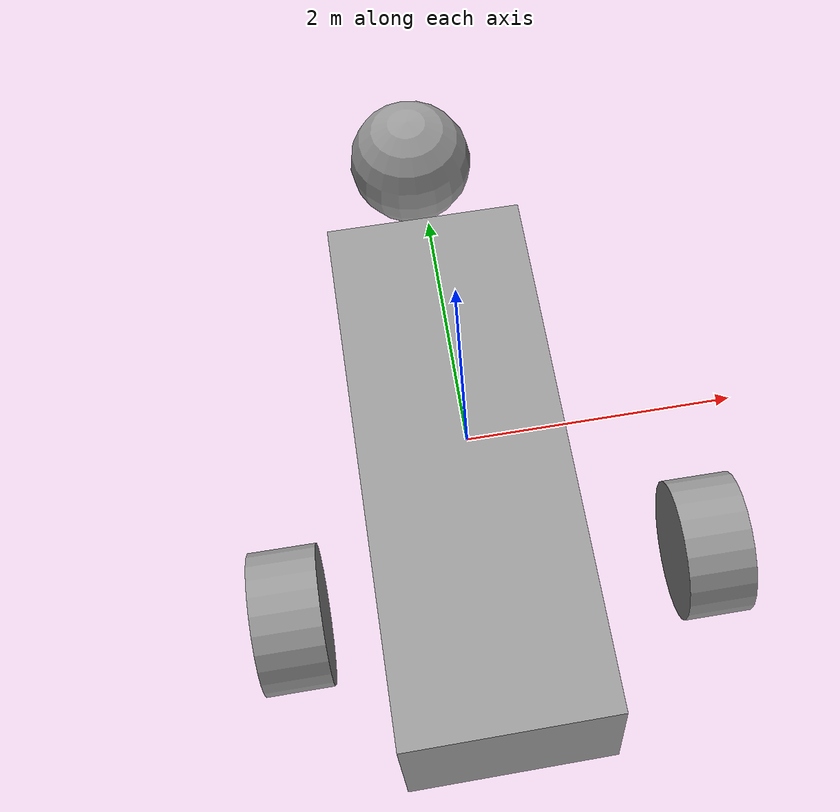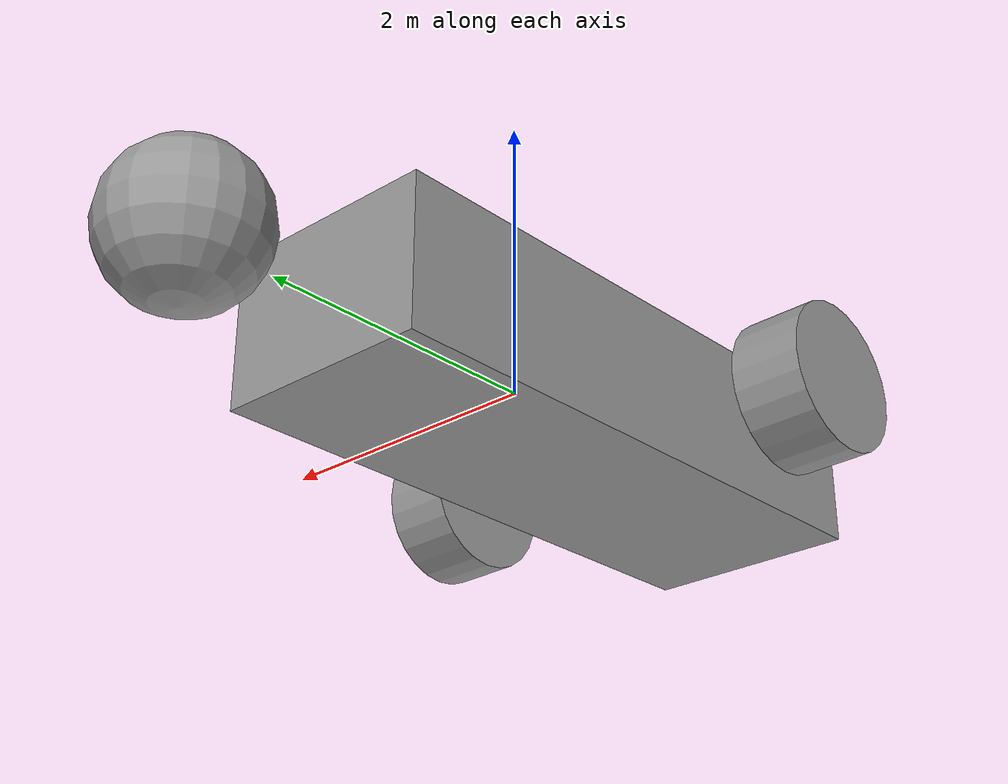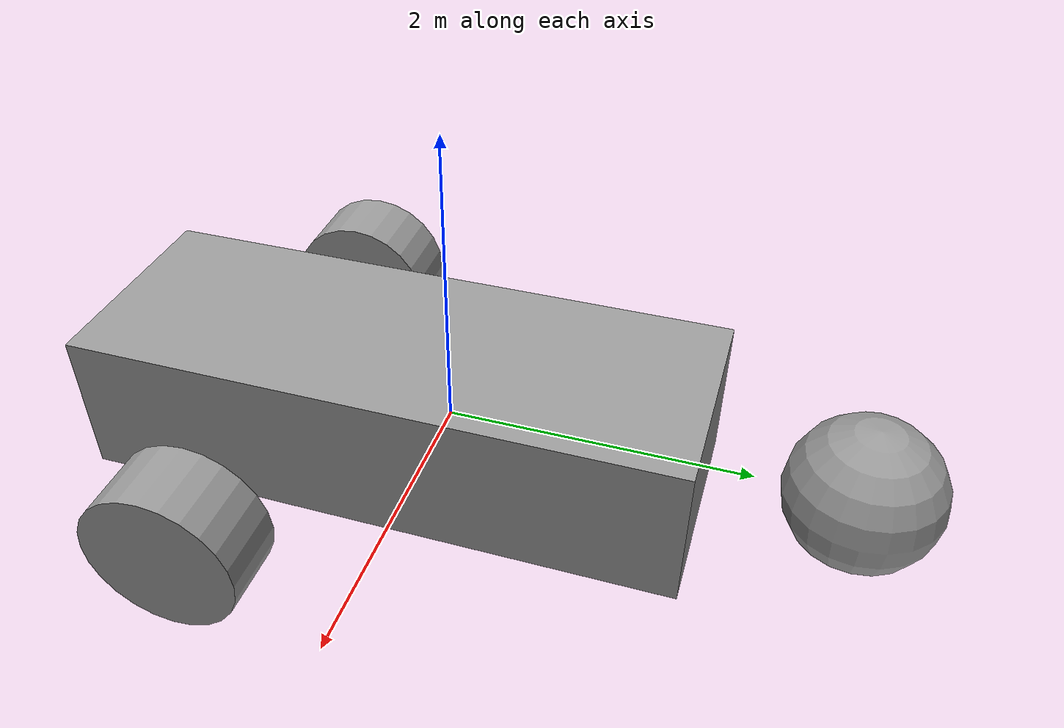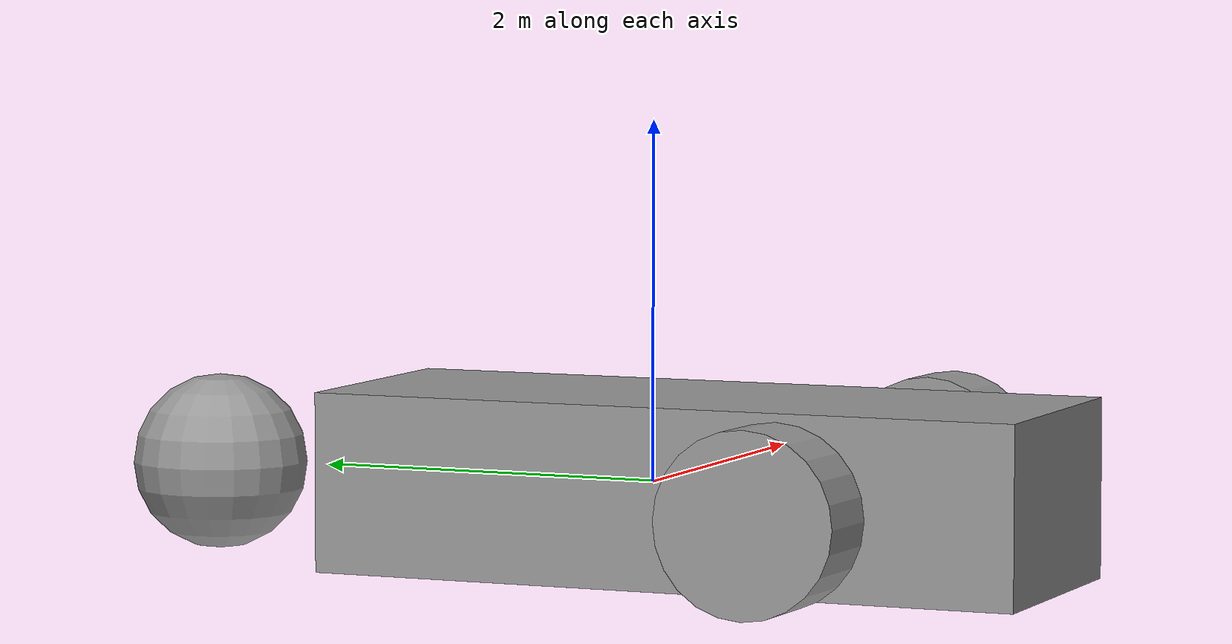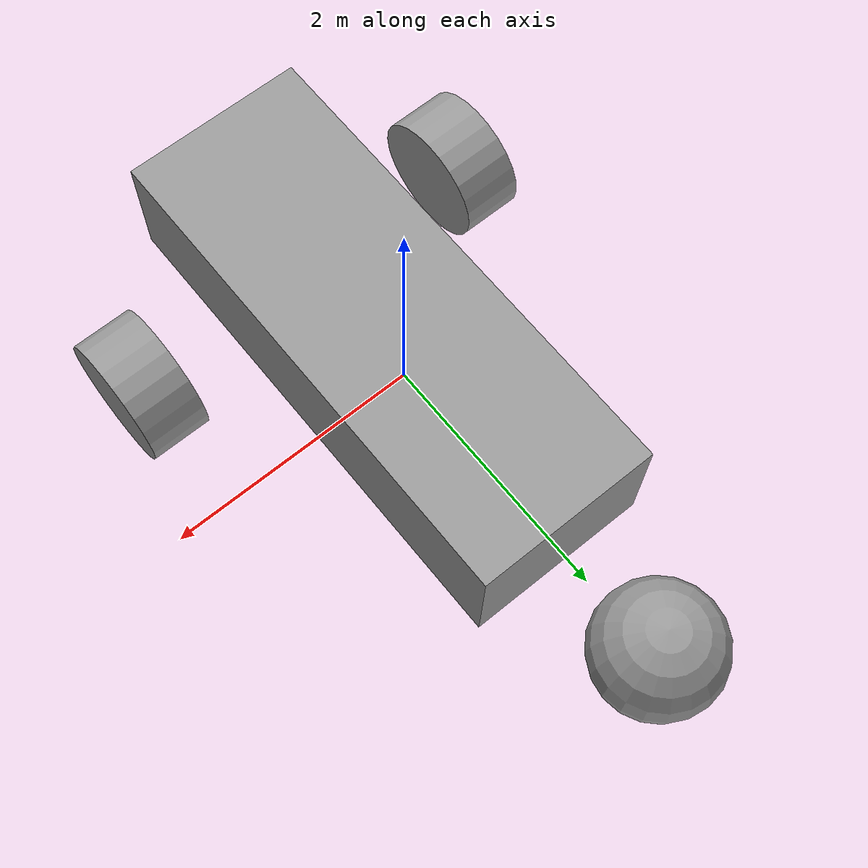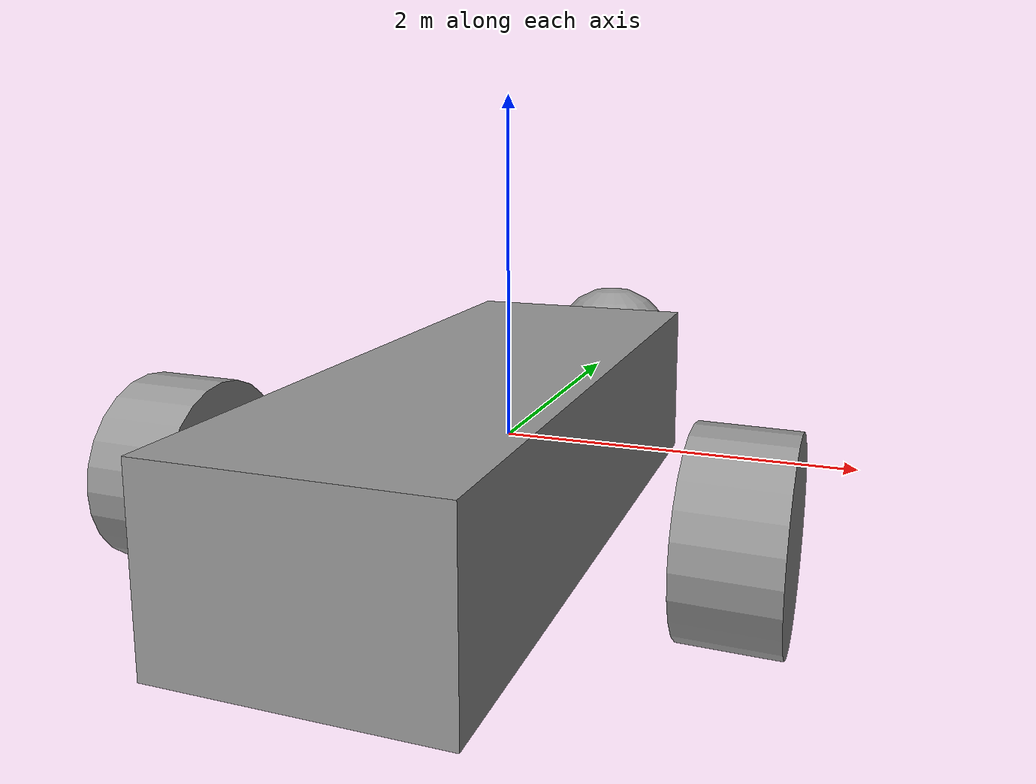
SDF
<?xml version='1.0'?>
<sdf version='1.6'>
  <model name='testbot'>
    <link name='link_4'>
      <pose frame=''>-1.41669 -1.17953 0 3.14159 1.55682 3.14159</pose>
      <inertial>
        <mass>0.473559</mass>
        <inertia>
          <ixx>0.0384474</ixx>
          <ixy>0</ixy>
          <ixz>0</ixz>
          <iyy>0.0384474</iyy>
          <iyz>0</iyz>
          <izz>0.0591949</izz>
        </inertia>
        <pose frame=''>0 0 0 0 -0 0</pose>
      </inertial>
      <visual name='visual'>
        <pose frame=''>0 0 0 0 -0 0</pose>
        <geometry>
          <cylinder>
            <radius>0.5</radius>
            <length>0.473562</length>
          </cylinder>
        </geometry>
        <material>
          <lighting>1</lighting>
          <script>
            <uri>file://media/materials/scripts/gazebo.material</uri>
            <name>Gazebo/Grey</name>
          </script>
          <ambient>0.3 0.3 0.3 1</ambient>
          <diffuse>0.7 0.7 0.7 1</diffuse>
          <specular>0.01 0.01 0.01 1</specular>
          <emissive>0 0 0 1</emissive>
        </material>
        <cast_shadows>1</cast_shadows>
        <transparency>0</transparency>
      </visual>
      <collision name='collision'>
        <laser_retro>0</laser_retro>
        <max_contacts>10</max_contacts>
        <pose frame=''>0 0 0 0 -0 0</pose>
        <geometry>
          <cylinder>
            <radius>0.5</radius>
            <length>0.473562</length>
          </cylinder>
        </geometry>
        <surface>
          <friction>
            <ode>
              <mu>1</mu>
              <mu2>1</mu2>
              <fdir1>0 0 0</fdir1>
              <slip1>0</slip1>
              <slip2>0</slip2>
            </ode>
            <torsional>
              <coefficient>1</coefficient>
              <patch_radius>0</patch_radius>
              <surface_radius>0</surface_radius>
              <use_patch_radius>1</use_patch_radius>
              <ode>
                <slip>0</slip>
              </ode>
            </torsional>
          </friction>
          <bounce>
            <restitution_coefficient>0</restitution_coefficient>
            <threshold>1e+06</threshold>
          </bounce>
          <contact>
            <collide_without_contact>0</collide_without_contact>
            <collide_without_contact_bitmask>1</collide_without_contact_bitmask>
            <collide_bitmask>1</collide_bitmask>
            <ode>
              <soft_cfm>0</soft_cfm>
              <soft_erp>0.2</soft_erp>
              <kp>1e+13</kp>
              <kd>1</kd>
              <max_vel>0.01</max_vel>
              <min_depth>0</min_depth>
            </ode>
            <bullet>
              <split_impulse>1</split_impulse>
              <split_impulse_penetration_threshold>-0.01</split_impulse_penetration_threshold>
              <soft_cfm>0</soft_cfm>
              <soft_erp>0.2</soft_erp>
              <kp>1e+13</kp>
              <kd>1</kd>
            </bullet>
          </contact>
        </surface>
      </collision>
    </link>
    <link name='link_4_clone'>
      <pose frame=''>1.53757 -1.14 0 3.14159 1.55682 3.14159</pose>
      <inertial>
        <mass>0.473559</mass>
        <inertia>
          <ixx>0.0384474</ixx>
          <ixy>0</ixy>
          <ixz>0</ixz>
          <iyy>0.0384474</iyy>
          <iyz>0</iyz>
          <izz>0.0591949</izz>
        </inertia>
        <pose frame=''>0 0 0 0 -0 0</pose>
      </inertial>
      <visual name='visual'>
        <pose frame=''>0 0 0 0 -0 0</pose>
        <geometry>
          <cylinder>
            <radius>0.5</radius>
            <length>0.473562</length>
          </cylinder>
        </geometry>
        <material>
          <lighting>1</lighting>
          <script>
            <uri>file://media/materials/scripts/gazebo.material</uri>
            <name>Gazebo/Grey</name>
          </script>
          <ambient>0.3 0.3 0.3 1</ambient>
          <diffuse>0.7 0.7 0.7 1</diffuse>
          <specular>0.01 0.01 0.01 1</specular>
          <emissive>0 0 0 1</emissive>
          <shader type='pixel'/>
        </material>
        <cast_shadows>1</cast_shadows>
        <transparency>0</transparency>
      </visual>
      <collision name='collision'>
        <laser_retro>0</laser_retro>
        <max_contacts>10</max_contacts>
        <pose frame=''>0 0 0 0 -0 0</pose>
        <geometry>
          <cylinder>
            <radius>0.5</radius>
            <length>0.473562</length>
          </cylinder>
        </geometry>
        <surface>
          <friction>
            <ode>
              <mu>1</mu>
              <mu2>1</mu2>
              <fdir1>0 0 0</fdir1>
              <slip1>0</slip1>
              <slip2>0</slip2>
            </ode>
            <torsional>
              <coefficient>1</coefficient>
              <patch_radius>0</patch_radius>
              <surface_radius>0</surface_radius>
              <use_patch_radius>1</use_patch_radius>
              <ode>
                <slip>0</slip>
              </ode>
            </torsional>
          </friction>
          <bounce>
            <restitution_coefficient>0</restitution_coefficient>
            <threshold>1e+06</threshold>
          </bounce>
          <contact>
            <collide_without_contact>0</collide_without_contact>
            <collide_without_contact_bitmask>1</collide_without_contact_bitmask>
            <collide_bitmask>1</collide_bitmask>
            <ode>
              <soft_cfm>0</soft_cfm>
              <soft_erp>0.2</soft_erp>
              <kp>1e+13</kp>
              <kd>1</kd>
              <max_vel>0.01</max_vel>
              <min_depth>0</min_depth>
            </ode>
            <bullet>
              <split_impulse>1</split_impulse>
              <split_impulse_penetration_threshold>-0.01</split_impulse_penetration_threshold>
              <soft_cfm>0</soft_cfm>
              <soft_erp>0.2</soft_erp>
              <kp>1e+13</kp>
              <kd>1</kd>
            </bullet>
          </contact>
        </surface>
      </collision>
    </link>
    <link name='link_5'>
      <pose frame=''>-0.060439 -0.340233 0 0 -0 0</pose>
      <inertial>
        <mass>6.02499</mass>
        <inertia>
          <ixx>8.80564</ixx>
          <ixy>0</ixy>
          <ixz>0</ixz>
          <iyy>1.60413</iyy>
          <iyz>0</iyz>
          <izz>9.4056</izz>
        </inertia>
        <pose frame=''>0 0 0 0 -0 0</pose>
      </inertial>
      <visual name='visual'>
        <pose frame=''>0 0 0 0 -0 0</pose>
        <geometry>
          <box>
            <size>1.48152 4.06672 1</size>
          </box>
        </geometry>
        <material>
          <lighting>1</lighting>
          <script>
            <uri>file://media/materials/scripts/gazebo.material</uri>
            <name>Gazebo/Grey</name>
          </script>
          <ambient>0.3 0.3 0.3 1</ambient>
          <diffuse>0.7 0.7 0.7 1</diffuse>
          <specular>0.01 0.01 0.01 1</specular>
          <emissive>0 0 0 1</emissive>
        </material>
        <cast_shadows>1</cast_shadows>
        <transparency>0</transparency>
      </visual>
      <collision name='collision'>
        <laser_retro>0</laser_retro>
        <max_contacts>10</max_contacts>
        <pose frame=''>0 0 0 0 -0 0</pose>
        <geometry>
          <box>
            <size>1.48152 4.06672 1</size>
          </box>
        </geometry>
        <surface>
          <friction>
            <ode>
              <mu>1</mu>
              <mu2>1</mu2>
              <fdir1>0 0 0</fdir1>
              <slip1>0</slip1>
              <slip2>0</slip2>
            </ode>
            <torsional>
              <coefficient>1</coefficient>
              <patch_radius>0</patch_radius>
              <surface_radius>0</surface_radius>
              <use_patch_radius>1</use_patch_radius>
              <ode>
                <slip>0</slip>
              </ode>
            </torsional>
          </friction>
          <bounce>
            <restitution_coefficient>0</restitution_coefficient>
            <threshold>1e+06</threshold>
          </bounce>
          <contact>
            <collide_without_contact>0</collide_without_contact>
            <collide_without_contact_bitmask>1</collide_without_contact_bitmask>
            <collide_bitmask>1</collide_bitmask>
            <ode>
              <soft_cfm>0</soft_cfm>
              <soft_erp>0.2</soft_erp>
              <kp>1e+13</kp>
              <kd>1</kd>
              <max_vel>0.01</max_vel>
              <min_depth>0</min_depth>
            </ode>
            <bullet>
              <split_impulse>1</split_impulse>
              <split_impulse_penetration_threshold>-0.01</split_impulse_penetration_threshold>
              <soft_cfm>0</soft_cfm>
              <soft_erp>0.2</soft_erp>
              <kp>1e+13</kp>
              <kd>1</kd>
            </bullet>
          </contact>
        </surface>
      </collision>
    </link>
    <link name='link_6'>
      <pose frame=''>-0.060439 2.65977 0 0 -0 0</pose>
      <inertial>
        <mass>1</mass>
        <inertia>
          <ixx>0.1</ixx>
          <ixy>0</ixy>
          <ixz>0</ixz>
          <iyy>0.1</iyy>
          <iyz>0</iyz>
          <izz>0.1</izz>
        </inertia>
      </inertial>
      <visual name='visual'>
        <pose frame=''>0 0 0 0 -0 0</pose>
        <geometry>
          <sphere>
            <radius>0.5</radius>
          </sphere>
        </geometry>
        <material>
          <lighting>1</lighting>
          <script>
            <uri>file://media/materials/scripts/gazebo.material</uri>
            <name>Gazebo/Grey</name>
          </script>
          <ambient>0.3 0.3 0.3 1</ambient>
          <diffuse>0.7 0.7 0.7 1</diffuse>
          <specular>0.01 0.01 0.01 1</specular>
          <emissive>0 0 0 1</emissive>
        </material>
        <cast_shadows>1</cast_shadows>
        <transparency>0</transparency>
      </visual>
      <collision name='collision'>
        <laser_retro>0</laser_retro>
        <max_contacts>10</max_contacts>
        <pose frame=''>0 0 0 0 -0 0</pose>
        <geometry>
          <sphere>
            <radius>0.5</radius>
          </sphere>
        </geometry>
        <surface>
          <friction>
            <ode>
              <mu>1</mu>
              <mu2>1</mu2>
              <fdir1>0 0 0</fdir1>
              <slip1>0</slip1>
              <slip2>0</slip2>
            </ode>
            <torsional>
              <coefficient>1</coefficient>
              <patch_radius>0</patch_radius>
              <surface_radius>0</surface_radius>
              <use_patch_radius>1</use_patch_radius>
              <ode>
                <slip>0</slip>
              </ode>
            </torsional>
          </friction>
          <bounce>
            <restitution_coefficient>0</restitution_coefficient>
            <threshold>1e+06</threshold>
          </bounce>
          <contact>
            <collide_without_contact>0</collide_without_contact>
            <collide_without_contact_bitmask>1</collide_without_contact_bitmask>
            <collide_bitmask>1</collide_bitmask>
            <ode>
              <soft_cfm>0</soft_cfm>
              <soft_erp>0.2</soft_erp>
              <kp>1e+13</kp>
              <kd>1</kd>
              <max_vel>0.01</max_vel>
              <min_depth>0</min_depth>
            </ode>
            <bullet>
              <split_impulse>1</split_impulse>
              <split_impulse_penetration_threshold>-0.01</split_impulse_penetration_threshold>
              <soft_cfm>0</soft_cfm>
              <soft_erp>0.2</soft_erp>
              <kp>1e+13</kp>
              <kd>1</kd>
            </bullet>
          </contact>
        </surface>
      </collision>
    </link>
    <joint name='link_5_JOINT_0' type='revolute'>
      <parent>link_5</parent>
      <child>link_4</child>
      <pose frame=''>0 0 0 0 -0 0</pose>
      <axis>
        <xyz>1 0 0</xyz>
        <use_parent_model_frame>0</use_parent_model_frame>
        <limit>
          <lower>-1.79769e+308</lower>
          <upper>1.79769e+308</upper>
          <effort>-1</effort>
          <velocity>-1</velocity>
        </limit>
        <dynamics>
          <spring_reference>0</spring_reference>
          <spring_stiffness>0</spring_stiffness>
          <damping>0</damping>
        </dynamics>
      </axis>
      <physics>
        <ode>
          <limit>
            <cfm>0</cfm>
            <erp>0.2</erp>
          </limit>
          <suspension>
            <cfm>0</cfm>
            <erp>0.2</erp>
          </suspension>
        </ode>
      </physics>
    </joint>
    <joint name='link_5_JOINT_1' type='revolute'>
      <parent>link_5</parent>
      <child>link_4_clone</child>
      <pose frame=''>0 0 0 0 -0 0</pose>
      <axis>
        <xyz>1 0 0</xyz>
        <use_parent_model_frame>0</use_parent_model_frame>
        <limit>
          <lower>-1.79769e+308</lower>
          <upper>1.79769e+308</upper>
          <effort>-1</effort>
          <velocity>-1</velocity>
        </limit>
        <dynamics>
          <spring_reference>0</spring_reference>
          <spring_stiffness>0</spring_stiffness>
          <damping>0</damping>
        </dynamics>
      </axis>
      <physics>
        <ode>
          <limit>
            <cfm>0</cfm>
            <erp>0.2</erp>
          </limit>
          <suspension>
            <cfm>0</cfm>
            <erp>0.2</erp>
          </suspension>
        </ode>
      </physics>
    </joint>
    <joint name='link_5_JOINT_2' type='ball'>
      <parent>link_5</parent>
      <child>link_6</child>
      <pose frame=''>0 0 0 0 -0 0</pose>
      <physics>
        <ode>
          <limit>
            <cfm>0</cfm>
            <erp>0.2</erp>
          </limit>
          <suspension>
            <cfm>0</cfm>
            <erp>0.2</erp>
          </suspension>
        </ode>
      </physics>
    </joint>
    <static>0</static>
    <allow_auto_disable>1</allow_auto_disable>
  </model>
</sdf>
